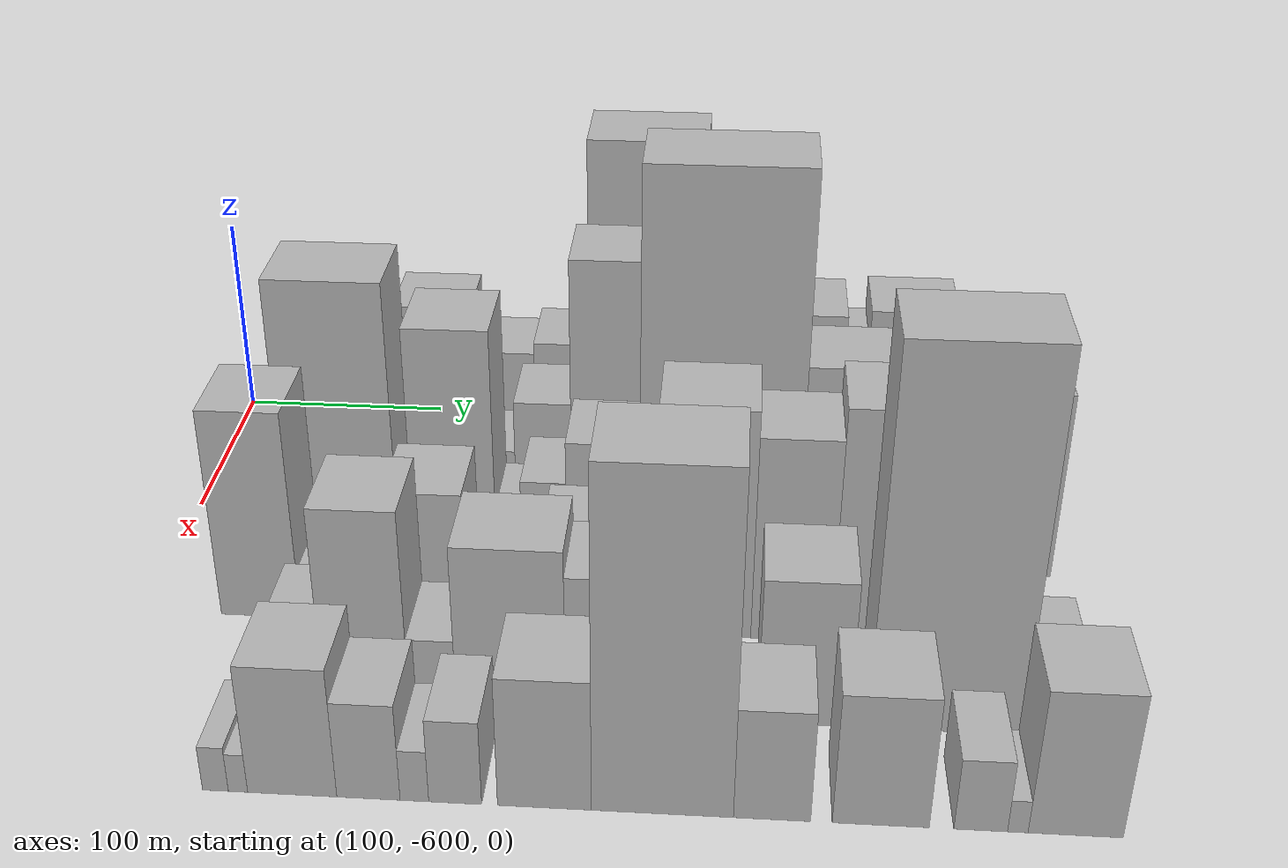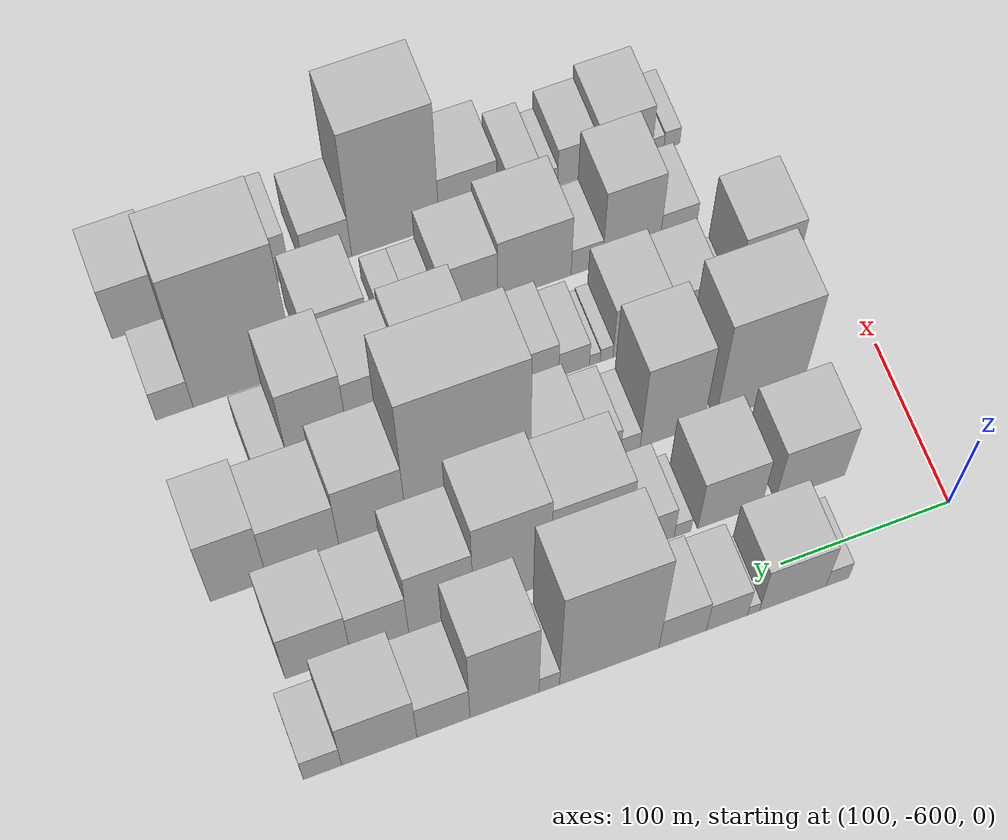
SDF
<sdf version="1.6">
 <world name="default">
  <model name="building_11">
   <static>1</static>
   <pose>100.0000 -524.5641 0 0.000000 0.000000 0.000000</pose>
   <link name="link">
    <pose>0 0 13.50 0 0 0</pose>
    <collision name="collision"><geometry><box><size>40.0000 13.4241 27.0000</size></box></geometry></collision>
    <visual name="visual">
     <cast_shadows>0</cast_shadows>
     <geometry><box><size>40.0000 13.4241 27.0000</size></box></geometry>
     <material>
      <script>
       <uri>model://HANNAS_wall/materials/scripts</uri>
       <uri>model://HANNAS_wall/materials/textures</uri>
       <name>vrc/HANNAS_wall</name>
      </script>
     </material>
    </visual>
   </link>
  </model>
  <model name="building_12">
   <static>1</static>
   <pose>100.0000 -498.3370 0 0.000000 0.000000 0.000000</pose>
   <link name="link">
    <pose>0 0 34.50 0 0 0</pose>
    <collision name="collision"><geometry><box><size>40.0000 39.0302 69.0000</size></box></geometry></collision>
    <visual name="visual">
     <cast_shadows>0</cast_shadows>
     <geometry><box><size>40.0000 39.0302 69.0000</size></box></geometry>
     <material>
      <script>
       <uri>model://HANNAS_wall/materials/scripts</uri>
       <uri>model://HANNAS_wall/materials/textures</uri>
       <name>vrc/HANNAS_wall</name>
      </script>
     </material>
    </visual>
   </link>
  </model>
  <model name="building_13">
   <static>1</static>
   <pose>100.0000 -475.2982 0 0.000000 0.000000 0.000000</pose>
   <link name="link">
    <pose>0 0 7.50 0 0 0</pose>
    <collision name="collision"><geometry><box><size>40.0000 7.0475 15.0000</size></box></geometry></collision>
    <visual name="visual">
     <cast_shadows>0</cast_shadows>
     <geometry><box><size>40.0000 7.0475 15.0000</size></box></geometry>
     <material>
      <script>
       <uri>model://HANNAS_wall/materials/scripts</uri>
       <uri>model://HANNAS_wall/materials/textures</uri>
       <name>vrc/HANNAS_wall</name>
      </script>
     </material>
    </visual>
   </link>
  </model>
  <model name="building_14">
   <static>1</static>
   <pose>100.0000 -459.7862 0 0.000000 0.000000 0.000000</pose>
   <link name="link">
    <pose>0 0 22.50 0 0 0</pose>
    <collision name="collision"><geometry><box><size>40.0000 23.9765 45.0000</size></box></geometry></collision>
    <visual name="visual">
     <cast_shadows>0</cast_shadows>
     <geometry><box><size>40.0000 23.9765 45.0000</size></box></geometry>
     <material>
      <script>
       <uri>model://HANNAS_wall/materials/scripts</uri>
       <uri>model://HANNAS_wall/materials/textures</uri>
       <name>vrc/HANNAS_wall</name>
      </script>
     </material>
    </visual>
   </link>
  </model>
  <model name="building_15">
   <static>1</static>
   <pose>100.0000 -434.0678 0 0.000000 0.000000 0.000000</pose>
   <link name="link">
    <pose>0 0 25.50 0 0 0</pose>
    <collision name="collision"><geometry><box><size>40.0000 27.4603 51.0000</size></box></geometry></collision>
    <visual name="visual">
     <cast_shadows>0</cast_shadows>
     <geometry><box><size>40.0000 27.4603 51.0000</size></box></geometry>
     <material>
      <script>
       <uri>model://HANNAS_wall/materials/scripts</uri>
       <uri>model://HANNAS_wall/materials/textures</uri>
       <name>vrc/HANNAS_wall</name>
      </script>
     </material>
    </visual>
   </link>
  </model>
  <model name="building_16">
   <static>1</static>
   <pose>100.0000 -391.7136 0 0.000000 0.000000 0.000000</pose>
   <link name="link">
    <pose>0 0 79.50 0 0 0</pose>
    <collision name="collision"><geometry><box><size>40.0000 57.2482 159.0000</size></box></geometry></collision>
    <visual name="visual">
     <cast_shadows>0</cast_shadows>
     <geometry><box><size>40.0000 57.2482 159.0000</size></box></geometry>
     <material>
      <script>
       <uri>model://HANNAS_wall/materials/scripts</uri>
       <uri>model://HANNAS_wall/materials/textures</uri>
       <name>vrc/HANNAS_wall</name>
      </script>
     </material>
    </visual>
   </link>
  </model>
  <model name="building_17">
   <static>1</static>
   <pose>100.0000 -357.2260 0 0.000000 0.000000 0.000000</pose>
   <link name="link">
    <pose>0 0 13.50 0 0 0</pose>
    <collision name="collision"><geometry><box><size>40.0000 11.7269 27.0000</size></box></geometry></collision>
    <visual name="visual">
     <cast_shadows>0</cast_shadows>
     <geometry><box><size>40.0000 11.7269 27.0000</size></box></geometry>
     <material>
      <script>
       <uri>model://HANNAS_wall/materials/scripts</uri>
       <uri>model://HANNAS_wall/materials/textures</uri>
       <name>vrc/HANNAS_wall</name>
      </script>
     </material>
    </visual>
   </link>
  </model>
  <model name="building_18">
   <static>1</static>
   <pose>100.0000 -331.7158 0 0.000000 0.000000 0.000000</pose>
   <link name="link">
    <pose>0 0 61.50 0 0 0</pose>
    <collision name="collision"><geometry><box><size>40.0000 39.2936 123.0000</size></box></geometry></collision>
    <visual name="visual">
     <cast_shadows>0</cast_shadows>
     <geometry><box><size>40.0000 39.2936 123.0000</size></box></geometry>
     <material>
      <script>
       <uri>model://HANNAS_wall/materials/scripts</uri>
       <uri>model://HANNAS_wall/materials/textures</uri>
       <name>vrc/HANNAS_wall</name>
      </script>
     </material>
    </visual>
   </link>
  </model>
  <model name="building_19">
   <static>1</static>
   <pose>100.0000 -297.0438 0 0.000000 0.000000 0.000000</pose>
   <link name="link">
    <pose>0 0 28.50 0 0 0</pose>
    <collision name="collision"><geometry><box><size>40.0000 30.0505 57.0000</size></box></geometry></collision>
    <visual name="visual">
     <cast_shadows>0</cast_shadows>
     <geometry><box><size>40.0000 30.0505 57.0000</size></box></geometry>
     <material>
      <script>
       <uri>model://HANNAS_wall/materials/scripts</uri>
       <uri>model://HANNAS_wall/materials/textures</uri>
       <name>vrc/HANNAS_wall</name>
      </script>
     </material>
    </visual>
   </link>
  </model>
  <model name="building_20">
   <static>1</static>
   <pose>100.0000 -260.8742 0 0.000000 0.000000 0.000000</pose>
   <link name="link">
    <pose>0 0 37.50 0 0 0</pose>
    <collision name="collision"><geometry><box><size>40.0000 42.2886 75.0000</size></box></geometry></collision>
    <visual name="visual">
     <cast_shadows>0</cast_shadows>
     <geometry><box><size>40.0000 42.2886 75.0000</size></box></geometry>
     <material>
      <script>
       <uri>model://HANNAS_wall/materials/scripts</uri>
       <uri>model://HANNAS_wall/materials/textures</uri>
       <name>vrc/HANNAS_wall</name>
      </script>
     </material>
    </visual>
   </link>
  </model>
  <model name="building_21">
   <static>1</static>
   <pose>100.0000 -228.9998 0 0.000000 0.000000 0.000000</pose>
   <link name="link">
    <pose>0 0 18.00 0 0 0</pose>
    <collision name="collision"><geometry><box><size>40.0000 21.4602 36.0000</size></box></geometry></collision>
    <visual name="visual">
     <cast_shadows>0</cast_shadows>
     <geometry><box><size>40.0000 21.4602 36.0000</size></box></geometry>
     <material>
      <script>
       <uri>model://HANNAS_wall/materials/scripts</uri>
       <uri>model://HANNAS_wall/materials/textures</uri>
       <name>vrc/HANNAS_wall</name>
      </script>
     </material>
    </visual>
   </link>
  </model>
  <model name="building_68">
   <static>1</static>
   <pose>155.0000 -531.8345 0 0.000000 0.000000 0.000000</pose>
   <link name="link">
    <pose>0 0 37.50 0 0 0</pose>
    <collision name="collision"><geometry><box><size>40.0000 41.4788 75.0000</size></box></geometry></collision>
    <visual name="visual">
     <cast_shadows>0</cast_shadows>
     <geometry><box><size>40.0000 41.4788 75.0000</size></box></geometry>
     <material>
      <script>
       <uri>model://HANNAS_wall/materials/scripts</uri>
       <uri>model://HANNAS_wall/materials/textures</uri>
       <name>vrc/HANNAS_wall</name>
      </script>
     </material>
    </visual>
   </link>
  </model>
  <model name="building_69">
   <static>1</static>
   <pose>155.0000 -484.1350 0 0.000000 0.000000 0.000000</pose>
   <link name="link">
    <pose>0 0 36.00 0 0 0</pose>
    <collision name="collision"><geometry><box><size>40.0000 37.9203 72.0000</size></box></geometry></collision>
    <visual name="visual">
     <cast_shadows>0</cast_shadows>
     <geometry><box><size>40.0000 37.9203 72.0000</size></box></geometry>
     <material>
      <script>
       <uri>model://HANNAS_wall/materials/scripts</uri>
       <uri>model://HANNAS_wall/materials/textures</uri>
       <name>vrc/HANNAS_wall</name>
      </script>
     </material>
    </visual>
   </link>
  </model>
  <model name="building_70">
   <static>1</static>
   <pose>155.0000 -456.2228 0 0.000000 0.000000 0.000000</pose>
   <link name="link">
    <pose>0 0 10.50 0 0 0</pose>
    <collision name="collision"><geometry><box><size>40.0000 9.9042 21.0000</size></box></geometry></collision>
    <visual name="visual">
     <cast_shadows>0</cast_shadows>
     <geometry><box><size>40.0000 9.9042 21.0000</size></box></geometry>
     <material>
      <script>
       <uri>model://HANNAS_wall/materials/scripts</uri>
       <uri>model://HANNAS_wall/materials/textures</uri>
       <name>vrc/HANNAS_wall</name>
      </script>
     </material>
    </visual>
   </link>
  </model>
  <model name="building_71">
   <static>1</static>
   <pose>155.0000 -437.6892 0 0.000000 0.000000 0.000000</pose>
   <link name="link">
    <pose>0 0 24.00 0 0 0</pose>
    <collision name="collision"><geometry><box><size>40.0000 27.1628 48.0000</size></box></geometry></collision>
    <visual name="visual">
     <cast_shadows>0</cast_shadows>
     <geometry><box><size>40.0000 27.1628 48.0000</size></box></geometry>
     <material>
      <script>
       <uri>model://HANNAS_wall/materials/scripts</uri>
       <uri>model://HANNAS_wall/materials/textures</uri>
       <name>vrc/HANNAS_wall</name>
      </script>
     </material>
    </visual>
   </link>
  </model>
  <model name="building_72">
   <static>1</static>
   <pose>155.0000 -401.4090 0 0.000000 0.000000 0.000000</pose>
   <link name="link">
    <pose>0 0 61.50 0 0 0</pose>
    <collision name="collision"><geometry><box><size>40.0000 45.3978 123.0000</size></box></geometry></collision>
    <visual name="visual">
     <cast_shadows>0</cast_shadows>
     <geometry><box><size>40.0000 45.3978 123.0000</size></box></geometry>
     <material>
      <script>
       <uri>model://HANNAS_wall/materials/scripts</uri>
       <uri>model://HANNAS_wall/materials/textures</uri>
       <name>vrc/HANNAS_wall</name>
      </script>
     </material>
    </visual>
   </link>
  </model>
  <model name="building_73">
   <static>1</static>
   <pose>155.0000 -356.7541 0 0.000000 0.000000 0.000000</pose>
   <link name="link">
    <pose>0 0 69.00 0 0 0</pose>
    <collision name="collision"><geometry><box><size>40.0000 43.9119 138.0000</size></box></geometry></collision>
    <visual name="visual">
     <cast_shadows>0</cast_shadows>
     <geometry><box><size>40.0000 43.9119 138.0000</size></box></geometry>
     <material>
      <script>
       <uri>model://HANNAS_wall/materials/scripts</uri>
       <uri>model://HANNAS_wall/materials/textures</uri>
       <name>vrc/HANNAS_wall</name>
      </script>
     </material>
    </visual>
   </link>
  </model>
  <model name="building_74">
   <static>1</static>
   <pose>155.0000 -316.0880 0 0.000000 0.000000 0.000000</pose>
   <link name="link">
    <pose>0 0 49.50 0 0 0</pose>
    <collision name="collision"><geometry><box><size>40.0000 37.4204 99.0000</size></box></geometry></collision>
    <visual name="visual">
     <cast_shadows>0</cast_shadows>
     <geometry><box><size>40.0000 37.4204 99.0000</size></box></geometry>
     <material>
      <script>
       <uri>model://HANNAS_wall/materials/scripts</uri>
       <uri>model://HANNAS_wall/materials/textures</uri>
       <name>vrc/HANNAS_wall</name>
      </script>
     </material>
    </visual>
   </link>
  </model>
  <model name="building_75">
   <static>1</static>
   <pose>155.0000 -280.8613 0 0.000000 0.000000 0.000000</pose>
   <link name="link">
    <pose>0 0 33.00 0 0 0</pose>
    <collision name="collision"><geometry><box><size>40.0000 33.0329 66.0000</size></box></geometry></collision>
    <visual name="visual">
     <cast_shadows>0</cast_shadows>
     <geometry><box><size>40.0000 33.0329 66.0000</size></box></geometry>
     <material>
      <script>
       <uri>model://HANNAS_wall/materials/scripts</uri>
       <uri>model://HANNAS_wall/materials/textures</uri>
       <name>vrc/HANNAS_wall</name>
      </script>
     </material>
    </visual>
   </link>
  </model>
  <model name="building_76">
   <static>1</static>
   <pose>155.0000 -245.7300 0 0.000000 0.000000 0.000000</pose>
   <link name="link">
    <pose>0 0 36.00 0 0 0</pose>
    <collision name="collision"><geometry><box><size>40.0000 37.2297 72.0000</size></box></geometry></collision>
    <visual name="visual">
     <cast_shadows>0</cast_shadows>
     <geometry><box><size>40.0000 37.2297 72.0000</size></box></geometry>
     <material>
      <script>
       <uri>model://HANNAS_wall/materials/scripts</uri>
       <uri>model://HANNAS_wall/materials/textures</uri>
       <name>vrc/HANNAS_wall</name>
      </script>
     </material>
    </visual>
   </link>
  </model>
  <model name="building_119">
   <static>1</static>
   <pose>210.0000 -524.1350 0 0.000000 0.000000 0.000000</pose>
   <link name="link">
    <pose>0 0 67.50 0 0 0</pose>
    <collision name="collision"><geometry><box><size>40.0000 51.7592 135.0000</size></box></geometry></collision>
    <visual name="visual">
     <cast_shadows>0</cast_shadows>
     <geometry><box><size>40.0000 51.7592 135.0000</size></box></geometry>
     <material>
      <script>
       <uri>model://HANNAS_wall/materials/scripts</uri>
       <uri>model://HANNAS_wall/materials/textures</uri>
       <name>vrc/HANNAS_wall</name>
      </script>
     </material>
    </visual>
   </link>
  </model>
  <model name="building_120">
   <static>1</static>
   <pose>210.0000 -472.2821 0 0.000000 0.000000 0.000000</pose>
   <link name="link">
    <pose>0 0 57.00 0 0 0</pose>
    <collision name="collision"><geometry><box><size>40.0000 37.9465 114.0000</size></box></geometry></collision>
    <visual name="visual">
     <cast_shadows>0</cast_shadows>
     <geometry><box><size>40.0000 37.9465 114.0000</size></box></geometry>
     <material>
      <script>
       <uri>model://HANNAS_wall/materials/scripts</uri>
       <uri>model://HANNAS_wall/materials/textures</uri>
       <name>vrc/HANNAS_wall</name>
      </script>
     </material>
    </visual>
   </link>
  </model>
  <model name="building_121">
   <static>1</static>
   <pose>210.0000 -447.4691 0 0.000000 0.000000 0.000000</pose>
   <link name="link">
    <pose>0 0 12.00 0 0 0</pose>
    <collision name="collision"><geometry><box><size>40.0000 11.6796 24.0000</size></box></geometry></collision>
    <visual name="visual">
     <cast_shadows>0</cast_shadows>
     <geometry><box><size>40.0000 11.6796 24.0000</size></box></geometry>
     <material>
      <script>
       <uri>model://HANNAS_wall/materials/scripts</uri>
       <uri>model://HANNAS_wall/materials/textures</uri>
       <name>vrc/HANNAS_wall</name>
      </script>
     </material>
    </visual>
   </link>
  </model>
  <model name="building_122">
   <static>1</static>
   <pose>210.0000 -431.3562 0 0.000000 0.000000 0.000000</pose>
   <link name="link">
    <pose>0 0 19.50 0 0 0</pose>
    <collision name="collision"><geometry><box><size>40.0000 20.5462 39.0000</size></box></geometry></collision>
    <visual name="visual">
     <cast_shadows>0</cast_shadows>
     <geometry><box><size>40.0000 20.5462 39.0000</size></box></geometry>
     <material>
      <script>
       <uri>model://HANNAS_wall/materials/scripts</uri>
       <uri>model://HANNAS_wall/materials/textures</uri>
       <name>vrc/HANNAS_wall</name>
      </script>
     </material>
    </visual>
   </link>
  </model>
  <model name="building_123">
   <static>1</static>
   <pose>210.0000 -404.6020 0 0.000000 0.000000 0.000000</pose>
   <link name="link">
    <pose>0 0 30.00 0 0 0</pose>
    <collision name="collision"><geometry><box><size>40.0000 32.9622 60.0000</size></box></geometry></collision>
    <visual name="visual">
     <cast_shadows>0</cast_shadows>
     <geometry><box><size>40.0000 32.9622 60.0000</size></box></geometry>
     <material>
      <script>
       <uri>model://HANNAS_wall/materials/scripts</uri>
       <uri>model://HANNAS_wall/materials/textures</uri>
       <name>vrc/HANNAS_wall</name>
      </script>
     </material>
    </visual>
   </link>
  </model>
  <model name="building_124">
   <static>1</static>
   <pose>210.0000 -352.3375 0 0.000000 0.000000 0.000000</pose>
   <link name="link">
    <pose>0 0 96.00 0 0 0</pose>
    <collision name="collision"><geometry><box><size>40.0000 71.5667 192.0000</size></box></geometry></collision>
    <visual name="visual">
     <cast_shadows>0</cast_shadows>
     <geometry><box><size>40.0000 71.5667 192.0000</size></box></geometry>
     <material>
      <script>
       <uri>model://HANNAS_wall/materials/scripts</uri>
       <uri>model://HANNAS_wall/materials/textures</uri>
       <name>vrc/HANNAS_wall</name>
      </script>
     </material>
    </visual>
   </link>
  </model>
  <model name="building_125">
   <static>1</static>
   <pose>210.0000 -297.3048 0 0.000000 0.000000 0.000000</pose>
   <link name="link">
    <pose>0 0 51.00 0 0 0</pose>
    <collision name="collision"><geometry><box><size>40.0000 38.4986 102.0000</size></box></geometry></collision>
    <visual name="visual">
     <cast_shadows>0</cast_shadows>
     <geometry><box><size>40.0000 38.4986 102.0000</size></box></geometry>
     <material>
      <script>
       <uri>model://HANNAS_wall/materials/scripts</uri>
       <uri>model://HANNAS_wall/materials/textures</uri>
       <name>vrc/HANNAS_wall</name>
      </script>
     </material>
    </visual>
   </link>
  </model>
  <model name="building_126">
   <static>1</static>
   <pose>210.0000 -257.0660 0 0.000000 0.000000 0.000000</pose>
   <link name="link">
    <pose>0 0 40.50 0 0 0</pose>
    <collision name="collision"><geometry><box><size>40.0000 41.9790 81.0000</size></box></geometry></collision>
    <visual name="visual">
     <cast_shadows>0</cast_shadows>
     <geometry><box><size>40.0000 41.9790 81.0000</size></box></geometry>
     <material>
      <script>
       <uri>model://HANNAS_wall/materials/scripts</uri>
       <uri>model://HANNAS_wall/materials/textures</uri>
       <name>vrc/HANNAS_wall</name>
      </script>
     </material>
    </visual>
   </link>
  </model>
  <model name="building_127">
   <static>1</static>
   <pose>210.0000 -219.6654 0 0.000000 0.000000 0.000000</pose>
   <link name="link">
    <pose>0 0 46.50 0 0 0</pose>
    <collision name="collision"><geometry><box><size>40.0000 32.8223 93.0000</size></box></geometry></collision>
    <visual name="visual">
     <cast_shadows>0</cast_shadows>
     <geometry><box><size>40.0000 32.8223 93.0000</size></box></geometry>
     <material>
      <script>
       <uri>model://HANNAS_wall/materials/scripts</uri>
       <uri>model://HANNAS_wall/materials/textures</uri>
       <name>vrc/HANNAS_wall</name>
      </script>
     </material>
    </visual>
   </link>
  </model>
  <model name="building_169">
   <static>1</static>
   <pose>265.0000 -548.9682 0 0.000000 0.000000 0.000000</pose>
   <link name="link">
    <pose>0 0 51.00 0 0 0</pose>
    <collision name="collision"><geometry><box><size>40.0000 35.0081 102.0000</size></box></geometry></collision>
    <visual name="visual">
     <cast_shadows>0</cast_shadows>
     <geometry><box><size>40.0000 35.0081 102.0000</size></box></geometry>
     <material>
      <script>
       <uri>model://HANNAS_wall/materials/scripts</uri>
       <uri>model://HANNAS_wall/materials/textures</uri>
       <name>vrc/HANNAS_wall</name>
      </script>
     </material>
    </visual>
   </link>
  </model>
  <model name="building_170">
   <static>1</static>
   <pose>265.0000 -526.5927 0 0.000000 0.000000 0.000000</pose>
   <link name="link">
    <pose>0 0 12.00 0 0 0</pose>
    <collision name="collision"><geometry><box><size>40.0000 9.7431 24.0000</size></box></geometry></collision>
    <visual name="visual">
     <cast_shadows>0</cast_shadows>
     <geometry><box><size>40.0000 9.7431 24.0000</size></box></geometry>
     <material>
      <script>
       <uri>model://HANNAS_wall/materials/scripts</uri>
       <uri>model://HANNAS_wall/materials/textures</uri>
       <name>vrc/HANNAS_wall</name>
      </script>
     </material>
    </visual>
   </link>
  </model>
  <model name="building_171">
   <static>1</static>
   <pose>265.0000 -506.9515 0 0.000000 0.000000 0.000000</pose>
   <link name="link">
    <pose>0 0 28.50 0 0 0</pose>
    <collision name="collision"><geometry><box><size>40.0000 29.5392 57.0000</size></box></geometry></collision>
    <visual name="visual">
     <cast_shadows>0</cast_shadows>
     <geometry><box><size>40.0000 29.5392 57.0000</size></box></geometry>
     <material>
      <script>
       <uri>model://HANNAS_wall/materials/scripts</uri>
       <uri>model://HANNAS_wall/materials/textures</uri>
       <name>vrc/HANNAS_wall</name>
      </script>
     </material>
    </visual>
   </link>
  </model>
  <model name="building_172">
   <static>1</static>
   <pose>265.0000 -475.4943 0 0.000000 0.000000 0.000000</pose>
   <link name="link">
    <pose>0 0 33.00 0 0 0</pose>
    <collision name="collision"><geometry><box><size>40.0000 33.3753 66.0000</size></box></geometry></collision>
    <visual name="visual">
     <cast_shadows>0</cast_shadows>
     <geometry><box><size>40.0000 33.3753 66.0000</size></box></geometry>
     <material>
      <script>
       <uri>model://HANNAS_wall/materials/scripts</uri>
       <uri>model://HANNAS_wall/materials/textures</uri>
       <name>vrc/HANNAS_wall</name>
      </script>
     </material>
    </visual>
   </link>
  </model>
  <model name="building_173">
   <static>1</static>
   <pose>265.0000 -454.9927 0 0.000000 0.000000 0.000000</pose>
   <link name="link">
    <pose>0 0 9.00 0 0 0</pose>
    <collision name="collision"><geometry><box><size>40.0000 7.6279 18.0000</size></box></geometry></collision>
    <visual name="visual">
     <cast_shadows>0</cast_shadows>
     <geometry><box><size>40.0000 7.6279 18.0000</size></box></geometry>
     <material>
      <script>
       <uri>model://HANNAS_wall/materials/scripts</uri>
       <uri>model://HANNAS_wall/materials/textures</uri>
       <name>vrc/HANNAS_wall</name>
      </script>
     </material>
    </visual>
   </link>
  </model>
  <model name="building_174">
   <static>1</static>
   <pose>265.0000 -447.9318 0 0.000000 0.000000 0.000000</pose>
   <link name="link">
    <pose>0 0 7.50 0 0 0</pose>
    <collision name="collision"><geometry><box><size>40.0000 6.4940 15.0000</size></box></geometry></collision>
    <visual name="visual">
     <cast_shadows>0</cast_shadows>
     <geometry><box><size>40.0000 6.4940 15.0000</size></box></geometry>
     <material>
      <script>
       <uri>model://HANNAS_wall/materials/scripts</uri>
       <uri>model://HANNAS_wall/materials/textures</uri>
       <name>vrc/HANNAS_wall</name>
      </script>
     </material>
    </visual>
   </link>
  </model>
  <model name="building_175">
   <static>1</static>
   <pose>265.0000 -435.4269 0 0.000000 0.000000 0.000000</pose>
   <link name="link">
    <pose>0 0 16.50 0 0 0</pose>
    <collision name="collision"><geometry><box><size>40.0000 18.5157 33.0000</size></box></geometry></collision>
    <visual name="visual">
     <cast_shadows>0</cast_shadows>
     <geometry><box><size>40.0000 18.5157 33.0000</size></box></geometry>
     <material>
      <script>
       <uri>model://HANNAS_wall/materials/scripts</uri>
       <uri>model://HANNAS_wall/materials/textures</uri>
       <name>vrc/HANNAS_wall</name>
      </script>
     </material>
    </visual>
   </link>
  </model>
  <model name="building_176">
   <static>1</static>
   <pose>265.0000 -412.4485 0 0.000000 0.000000 0.000000</pose>
   <link name="link">
    <pose>0 0 24.00 0 0 0</pose>
    <collision name="collision"><geometry><box><size>40.0000 27.4411 48.0000</size></box></geometry></collision>
    <visual name="visual">
     <cast_shadows>0</cast_shadows>
     <geometry><box><size>40.0000 27.4411 48.0000</size></box></geometry>
     <material>
      <script>
       <uri>model://HANNAS_wall/materials/scripts</uri>
       <uri>model://HANNAS_wall/materials/textures</uri>
       <name>vrc/HANNAS_wall</name>
      </script>
     </material>
    </visual>
   </link>
  </model>
  <model name="building_177">
   <static>1</static>
   <pose>265.0000 -388.0995 0 0.000000 0.000000 0.000000</pose>
   <link name="link">
    <pose>0 0 18.00 0 0 0</pose>
    <collision name="collision"><geometry><box><size>40.0000 21.2570 36.0000</size></box></geometry></collision>
    <visual name="visual">
     <cast_shadows>0</cast_shadows>
     <geometry><box><size>40.0000 21.2570 36.0000</size></box></geometry>
     <material>
      <script>
       <uri>model://HANNAS_wall/materials/scripts</uri>
       <uri>model://HANNAS_wall/materials/textures</uri>
       <name>vrc/HANNAS_wall</name>
      </script>
     </material>
    </visual>
   </link>
  </model>
  <model name="building_178">
   <static>1</static>
   <pose>265.0000 -357.2744 0 0.000000 0.000000 0.000000</pose>
   <link name="link">
    <pose>0 0 55.50 0 0 0</pose>
    <collision name="collision"><geometry><box><size>40.0000 40.3933 111.0000</size></box></geometry></collision>
    <visual name="visual">
     <cast_shadows>0</cast_shadows>
     <geometry><box><size>40.0000 40.3933 111.0000</size></box></geometry>
     <material>
      <script>
       <uri>model://HANNAS_wall/materials/scripts</uri>
       <uri>model://HANNAS_wall/materials/textures</uri>
       <name>vrc/HANNAS_wall</name>
      </script>
     </material>
    </visual>
   </link>
  </model>
  <model name="building_179">
   <static>1</static>
   <pose>265.0000 -320.0539 0 0.000000 0.000000 0.000000</pose>
   <link name="link">
    <pose>0 0 49.50 0 0 0</pose>
    <collision name="collision"><geometry><box><size>40.0000 34.0477 99.0000</size></box></geometry></collision>
    <visual name="visual">
     <cast_shadows>0</cast_shadows>
     <geometry><box><size>40.0000 34.0477 99.0000</size></box></geometry>
     <material>
      <script>
       <uri>model://HANNAS_wall/materials/scripts</uri>
       <uri>model://HANNAS_wall/materials/textures</uri>
       <name>vrc/HANNAS_wall</name>
      </script>
     </material>
    </visual>
   </link>
  </model>
  <model name="building_180">
   <static>1</static>
   <pose>265.0000 -285.5125 0 0.000000 0.000000 0.000000</pose>
   <link name="link">
    <pose>0 0 57.00 0 0 0</pose>
    <collision name="collision"><geometry><box><size>40.0000 35.0350 114.0000</size></box></geometry></collision>
    <visual name="visual">
     <cast_shadows>0</cast_shadows>
     <geometry><box><size>40.0000 35.0350 114.0000</size></box></geometry>
     <material>
      <script>
       <uri>model://HANNAS_wall/materials/scripts</uri>
       <uri>model://HANNAS_wall/materials/textures</uri>
       <name>vrc/HANNAS_wall</name>
      </script>
     </material>
    </visual>
   </link>
  </model>
  <model name="building_181">
   <static>1</static>
   <pose>265.0000 -258.2749 0 0.000000 0.000000 0.000000</pose>
   <link name="link">
    <pose>0 0 18.00 0 0 0</pose>
    <collision name="collision"><geometry><box><size>40.0000 19.4403 36.0000</size></box></geometry></collision>
    <visual name="visual">
     <cast_shadows>0</cast_shadows>
     <geometry><box><size>40.0000 19.4403 36.0000</size></box></geometry>
     <material>
      <script>
       <uri>model://HANNAS_wall/materials/scripts</uri>
       <uri>model://HANNAS_wall/materials/textures</uri>
       <name>vrc/HANNAS_wall</name>
      </script>
     </material>
    </visual>
   </link>
  </model>
  <model name="building_227">
   <static>1</static>
   <pose>320.0000 -520.1693 0 0.000000 0.000000 0.000000</pose>
   <link name="link">
    <pose>0 0 19.50 0 0 0</pose>
    <collision name="collision"><geometry><box><size>40.0000 22.0509 39.0000</size></box></geometry></collision>
    <visual name="visual">
     <cast_shadows>0</cast_shadows>
     <geometry><box><size>40.0000 22.0509 39.0000</size></box></geometry>
     <material>
      <script>
       <uri>model://HANNAS_wall/materials/scripts</uri>
       <uri>model://HANNAS_wall/materials/textures</uri>
       <name>vrc/HANNAS_wall</name>
      </script>
     </material>
    </visual>
   </link>
  </model>
  <model name="building_228">
   <static>1</static>
   <pose>320.0000 -491.6302 0 0.000000 0.000000 0.000000</pose>
   <link name="link">
    <pose>0 0 46.50 0 0 0</pose>
    <collision name="collision"><geometry><box><size>40.0000 35.0271 93.0000</size></box></geometry></collision>
    <visual name="visual">
     <cast_shadows>0</cast_shadows>
     <geometry><box><size>40.0000 35.0271 93.0000</size></box></geometry>
     <material>
      <script>
       <uri>model://HANNAS_wall/materials/scripts</uri>
       <uri>model://HANNAS_wall/materials/textures</uri>
       <name>vrc/HANNAS_wall</name>
      </script>
     </material>
    </visual>
   </link>
  </model>
  <model name="building_229">
   <static>1</static>
   <pose>320.0000 -464.5859 0 0.000000 0.000000 0.000000</pose>
   <link name="link">
    <pose>0 0 16.50 0 0 0</pose>
    <collision name="collision"><geometry><box><size>40.0000 19.0615 33.0000</size></box></geometry></collision>
    <visual name="visual">
     <cast_shadows>0</cast_shadows>
     <geometry><box><size>40.0000 19.0615 33.0000</size></box></geometry>
     <material>
      <script>
       <uri>model://HANNAS_wall/materials/scripts</uri>
       <uri>model://HANNAS_wall/materials/textures</uri>
       <name>vrc/HANNAS_wall</name>
      </script>
     </material>
    </visual>
   </link>
  </model>
  <model name="building_230">
   <static>1</static>
   <pose>320.0000 -432.9316 0 0.000000 0.000000 0.000000</pose>
   <link name="link">
    <pose>0 0 39.00 0 0 0</pose>
    <collision name="collision"><geometry><box><size>40.0000 44.2472 78.0000</size></box></geometry></collision>
    <visual name="visual">
     <cast_shadows>0</cast_shadows>
     <geometry><box><size>40.0000 44.2472 78.0000</size></box></geometry>
     <material>
      <script>
       <uri>model://HANNAS_wall/materials/scripts</uri>
       <uri>model://HANNAS_wall/materials/textures</uri>
       <name>vrc/HANNAS_wall</name>
      </script>
     </material>
    </visual>
   </link>
  </model>
  <model name="building_231">
   <static>1</static>
   <pose>320.0000 -393.4362 0 0.000000 0.000000 0.000000</pose>
   <link name="link">
    <pose>0 0 33.00 0 0 0</pose>
    <collision name="collision"><geometry><box><size>40.0000 34.7436 66.0000</size></box></geometry></collision>
    <visual name="visual">
     <cast_shadows>0</cast_shadows>
     <geometry><box><size>40.0000 34.7436 66.0000</size></box></geometry>
     <material>
      <script>
       <uri>model://HANNAS_wall/materials/scripts</uri>
       <uri>model://HANNAS_wall/materials/textures</uri>
       <name>vrc/HANNAS_wall</name>
      </script>
     </material>
    </visual>
   </link>
  </model>
  <model name="building_232">
   <static>1</static>
   <pose>320.0000 -367.6159 0 0.000000 0.000000 0.000000</pose>
   <link name="link">
    <pose>0 0 15.00 0 0 0</pose>
    <collision name="collision"><geometry><box><size>40.0000 16.8969 30.0000</size></box></geometry></collision>
    <visual name="visual">
     <cast_shadows>0</cast_shadows>
     <geometry><box><size>40.0000 16.8969 30.0000</size></box></geometry>
     <material>
      <script>
       <uri>model://HANNAS_wall/materials/scripts</uri>
       <uri>model://HANNAS_wall/materials/textures</uri>
       <name>vrc/HANNAS_wall</name>
      </script>
     </material>
    </visual>
   </link>
  </model>
  <model name="building_233">
   <static>1</static>
   <pose>320.0000 -351.1446 0 0.000000 0.000000 0.000000</pose>
   <link name="link">
    <pose>0 0 15.00 0 0 0</pose>
    <collision name="collision"><geometry><box><size>40.0000 16.0457 30.0000</size></box></geometry></collision>
    <visual name="visual">
     <cast_shadows>0</cast_shadows>
     <geometry><box><size>40.0000 16.0457 30.0000</size></box></geometry>
     <material>
      <script>
       <uri>model://HANNAS_wall/materials/scripts</uri>
       <uri>model://HANNAS_wall/materials/textures</uri>
       <name>vrc/HANNAS_wall</name>
      </script>
     </material>
    </visual>
   </link>
  </model>
  <model name="building_234">
   <static>1</static>
   <pose>320.0000 -315.8173 0 0.000000 0.000000 0.000000</pose>
   <link name="link">
    <pose>0 0 34.50 0 0 0</pose>
    <collision name="collision"><geometry><box><size>40.0000 36.6090 69.0000</size></box></geometry></collision>
    <visual name="visual">
     <cast_shadows>0</cast_shadows>
     <geometry><box><size>40.0000 36.6090 69.0000</size></box></geometry>
     <material>
      <script>
       <uri>model://HANNAS_wall/materials/scripts</uri>
       <uri>model://HANNAS_wall/materials/textures</uri>
       <name>vrc/HANNAS_wall</name>
      </script>
     </material>
    </visual>
   </link>
  </model>
  <model name="building_235">
   <static>1</static>
   <pose>320.0000 -260.1561 0 0.000000 0.000000 0.000000</pose>
   <link name="link">
    <pose>0 0 87.00 0 0 0</pose>
    <collision name="collision"><geometry><box><size>40.0000 60.7133 174.0000</size></box></geometry></collision>
    <visual name="visual">
     <cast_shadows>0</cast_shadows>
     <geometry><box><size>40.0000 60.7133 174.0000</size></box></geometry>
     <material>
      <script>
       <uri>model://HANNAS_wall/materials/scripts</uri>
       <uri>model://HANNAS_wall/materials/textures</uri>
       <name>vrc/HANNAS_wall</name>
      </script>
     </material>
    </visual>
   </link>
  </model>
  <model name="building_236">
   <static>1</static>
   <pose>320.0000 -218.8803 0 0.000000 0.000000 0.000000</pose>
   <link name="link">
    <pose>0 0 19.50 0 0 0</pose>
    <collision name="collision"><geometry><box><size>40.0000 21.8382 39.0000</size></box></geometry></collision>
    <visual name="visual">
     <cast_shadows>0</cast_shadows>
     <geometry><box><size>40.0000 21.8382 39.0000</size></box></geometry>
     <material>
      <script>
       <uri>model://HANNAS_wall/materials/scripts</uri>
       <uri>model://HANNAS_wall/materials/textures</uri>
       <name>vrc/HANNAS_wall</name>
      </script>
     </material>
    </visual>
   </link>
  </model>
  <model name="building_280">
   <static>1</static>
   <pose>375.0000 -538.6967 0 0.000000 0.000000 0.000000</pose>
   <link name="link">
    <pose>0 0 10.50 0 0 0</pose>
    <collision name="collision"><geometry><box><size>40.0000 9.9439 21.0000</size></box></geometry></collision>
    <visual name="visual">
     <cast_shadows>0</cast_shadows>
     <geometry><box><size>40.0000 9.9439 21.0000</size></box></geometry>
     <material>
      <script>
       <uri>model://HANNAS_wall/materials/scripts</uri>
       <uri>model://HANNAS_wall/materials/textures</uri>
       <name>vrc/HANNAS_wall</name>
      </script>
     </material>
    </visual>
   </link>
  </model>
  <model name="building_281">
   <static>1</static>
   <pose>375.0000 -530.0145 0 0.000000 0.000000 0.000000</pose>
   <link name="link">
    <pose>0 0 9.00 0 0 0</pose>
    <collision name="collision"><geometry><box><size>40.0000 7.4206 18.0000</size></box></geometry></collision>
    <visual name="visual">
     <cast_shadows>0</cast_shadows>
     <geometry><box><size>40.0000 7.4206 18.0000</size></box></geometry>
     <material>
      <script>
       <uri>model://HANNAS_wall/materials/scripts</uri>
       <uri>model://HANNAS_wall/materials/textures</uri>
       <name>vrc/HANNAS_wall</name>
      </script>
     </material>
    </visual>
   </link>
  </model>
  <model name="building_282">
   <static>1</static>
   <pose>375.0000 -509.1980 0 0.000000 0.000000 0.000000</pose>
   <link name="link">
    <pose>0 0 30.00 0 0 0</pose>
    <collision name="collision"><geometry><box><size>40.0000 34.2124 60.0000</size></box></geometry></collision>
    <visual name="visual">
     <cast_shadows>0</cast_shadows>
     <geometry><box><size>40.0000 34.2124 60.0000</size></box></geometry>
     <material>
      <script>
       <uri>model://HANNAS_wall/materials/scripts</uri>
       <uri>model://HANNAS_wall/materials/textures</uri>
       <name>vrc/HANNAS_wall</name>
      </script>
     </material>
    </visual>
   </link>
  </model>
  <model name="building_283">
   <static>1</static>
   <pose>375.0000 -480.0314 0 0.000000 0.000000 0.000000</pose>
   <link name="link">
    <pose>0 0 22.50 0 0 0</pose>
    <collision name="collision"><geometry><box><size>40.0000 24.1207 45.0000</size></box></geometry></collision>
    <visual name="visual">
     <cast_shadows>0</cast_shadows>
     <geometry><box><size>40.0000 24.1207 45.0000</size></box></geometry>
     <material>
      <script>
       <uri>model://HANNAS_wall/materials/scripts</uri>
       <uri>model://HANNAS_wall/materials/textures</uri>
       <name>vrc/HANNAS_wall</name>
      </script>
     </material>
    </visual>
   </link>
  </model>
  <model name="building_284">
   <static>1</static>
   <pose>375.0000 -462.5364 0 0.000000 0.000000 0.000000</pose>
   <link name="link">
    <pose>0 0 12.00 0 0 0</pose>
    <collision name="collision"><geometry><box><size>40.0000 10.8693 24.0000</size></box></geometry></collision>
    <visual name="visual">
     <cast_shadows>0</cast_shadows>
     <geometry><box><size>40.0000 10.8693 24.0000</size></box></geometry>
     <material>
      <script>
       <uri>model://HANNAS_wall/materials/scripts</uri>
       <uri>model://HANNAS_wall/materials/textures</uri>
       <name>vrc/HANNAS_wall</name>
      </script>
     </material>
    </visual>
   </link>
  </model>
  <model name="building_285">
   <static>1</static>
   <pose>375.0000 -447.0799 0 0.000000 0.000000 0.000000</pose>
   <link name="link">
    <pose>0 0 19.50 0 0 0</pose>
    <collision name="collision"><geometry><box><size>40.0000 20.0438 39.0000</size></box></geometry></collision>
    <visual name="visual">
     <cast_shadows>0</cast_shadows>
     <geometry><box><size>40.0000 20.0438 39.0000</size></box></geometry>
     <material>
      <script>
       <uri>model://HANNAS_wall/materials/scripts</uri>
       <uri>model://HANNAS_wall/materials/textures</uri>
       <name>vrc/HANNAS_wall</name>
      </script>
     </material>
    </visual>
   </link>
  </model>
  <model name="building_286">
   <static>1</static>
   <pose>375.0000 -413.4021 0 0.000000 0.000000 0.000000</pose>
   <link name="link">
    <pose>0 0 30.00 0 0 0</pose>
    <collision name="collision"><geometry><box><size>40.0000 35.3116 60.0000</size></box></geometry></collision>
    <visual name="visual">
     <cast_shadows>0</cast_shadows>
     <geometry><box><size>40.0000 35.3116 60.0000</size></box></geometry>
     <material>
      <script>
       <uri>model://HANNAS_wall/materials/scripts</uri>
       <uri>model://HANNAS_wall/materials/textures</uri>
       <name>vrc/HANNAS_wall</name>
      </script>
     </material>
    </visual>
   </link>
  </model>
  <model name="building_287">
   <static>1</static>
   <pose>375.0000 -369.2446 0 0.000000 0.000000 0.000000</pose>
   <link name="link">
    <pose>0 0 76.50 0 0 0</pose>
    <collision name="collision"><geometry><box><size>40.0000 53.0034 153.0000</size></box></geometry></collision>
    <visual name="visual">
     <cast_shadows>0</cast_shadows>
     <geometry><box><size>40.0000 53.0034 153.0000</size></box></geometry>
     <material>
      <script>
       <uri>model://HANNAS_wall/materials/scripts</uri>
       <uri>model://HANNAS_wall/materials/textures</uri>
       <name>vrc/HANNAS_wall</name>
      </script>
     </material>
    </visual>
   </link>
  </model>
  <model name="building_288">
   <static>1</static>
   <pose>375.0000 -328.4664 0 0.000000 0.000000 0.000000</pose>
   <link name="link">
    <pose>0 0 25.50 0 0 0</pose>
    <collision name="collision"><geometry><box><size>40.0000 28.5529 51.0000</size></box></geometry></collision>
    <visual name="visual">
     <cast_shadows>0</cast_shadows>
     <geometry><box><size>40.0000 28.5529 51.0000</size></box></geometry>
     <material>
      <script>
       <uri>model://HANNAS_wall/materials/scripts</uri>
       <uri>model://HANNAS_wall/materials/textures</uri>
       <name>vrc/HANNAS_wall</name>
      </script>
     </material>
    </visual>
   </link>
  </model>
  <model name="building_289">
   <static>1</static>
   <pose>375.0000 -288.3876 0 0.000000 0.000000 0.000000</pose>
   <link name="link">
    <pose>0 0 30.00 0 0 0</pose>
    <collision name="collision"><geometry><box><size>40.0000 35.6047 60.0000</size></box></geometry></collision>
    <visual name="visual">
     <cast_shadows>0</cast_shadows>
     <geometry><box><size>40.0000 35.6047 60.0000</size></box></geometry>
     <material>
      <script>
       <uri>model://HANNAS_wall/materials/scripts</uri>
       <uri>model://HANNAS_wall/materials/textures</uri>
       <name>vrc/HANNAS_wall</name>
      </script>
     </material>
    </visual>
   </link>
  </model>
  <model name="building_290">
   <static>1</static>
   <pose>375.0000 -251.8155 0 0.000000 0.000000 0.000000</pose>
   <link name="link">
    <pose>0 0 16.50 0 0 0</pose>
    <collision name="collision"><geometry><box><size>40.0000 19.5397 33.0000</size></box></geometry></collision>
    <visual name="visual">
     <cast_shadows>0</cast_shadows>
     <geometry><box><size>40.0000 19.5397 33.0000</size></box></geometry>
     <material>
      <script>
       <uri>model://HANNAS_wall/materials/scripts</uri>
       <uri>model://HANNAS_wall/materials/textures</uri>
       <name>vrc/HANNAS_wall</name>
      </script>
     </material>
    </visual>
   </link>
  </model>
  <model name="building_291">
   <static>1</static>
   <pose>375.0000 -238.2997 0 0.000000 0.000000 0.000000</pose>
   <link name="link">
    <pose>0 0 7.50 0 0 0</pose>
    <collision name="collision"><geometry><box><size>40.0000 7.4918 15.0000</size></box></geometry></collision>
    <visual name="visual">
     <cast_shadows>0</cast_shadows>
     <geometry><box><size>40.0000 7.4918 15.0000</size></box></geometry>
     <material>
      <script>
       <uri>model://HANNAS_wall/materials/scripts</uri>
       <uri>model://HANNAS_wall/materials/textures</uri>
       <name>vrc/HANNAS_wall</name>
      </script>
     </material>
    </visual>
   </link>
  </model>
  <model name="building_292">
   <static>1</static>
   <pose>375.0000 -217.3105 0 0.000000 0.000000 0.000000</pose>
   <link name="link">
    <pose>0 0 33.00 0 0 0</pose>
    <collision name="collision"><geometry><box><size>40.0000 34.4865 66.0000</size></box></geometry></collision>
    <visual name="visual">
     <cast_shadows>0</cast_shadows>
     <geometry><box><size>40.0000 34.4865 66.0000</size></box></geometry>
     <material>
      <script>
       <uri>model://HANNAS_wall/materials/scripts</uri>
       <uri>model://HANNAS_wall/materials/textures</uri>
       <name>vrc/HANNAS_wall</name>
      </script>
     </material>
    </visual>
   </link>
  </model>
 </world>
</sdf>
